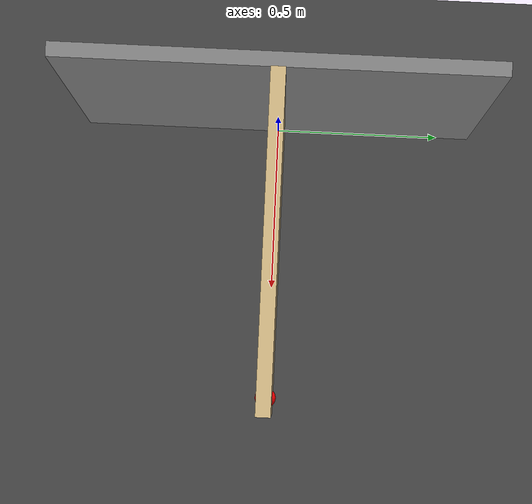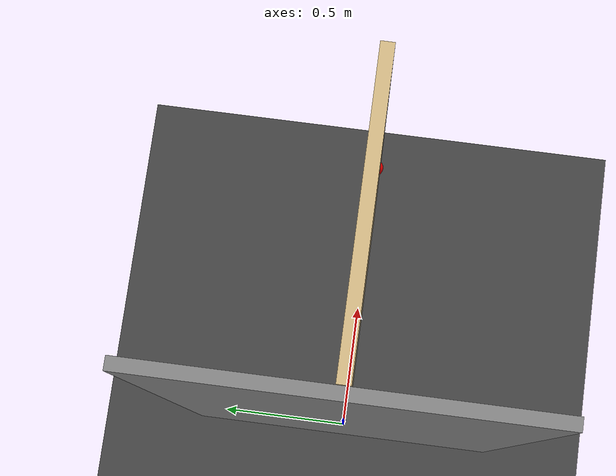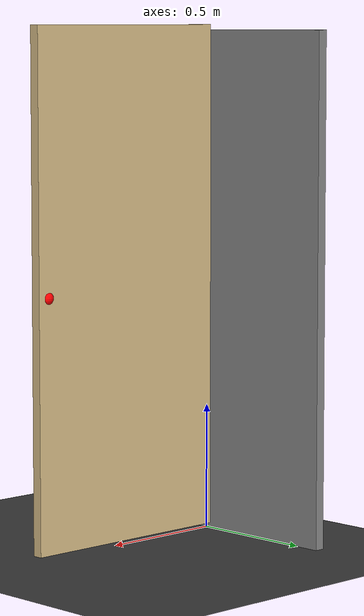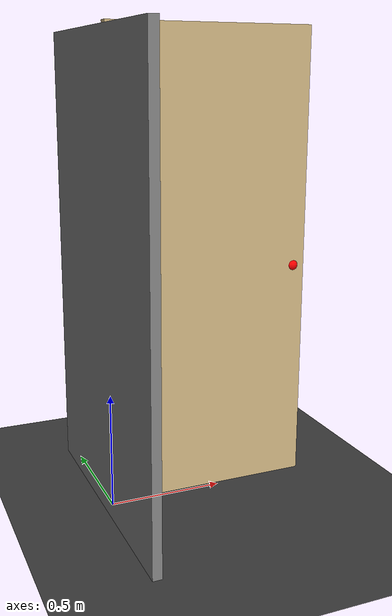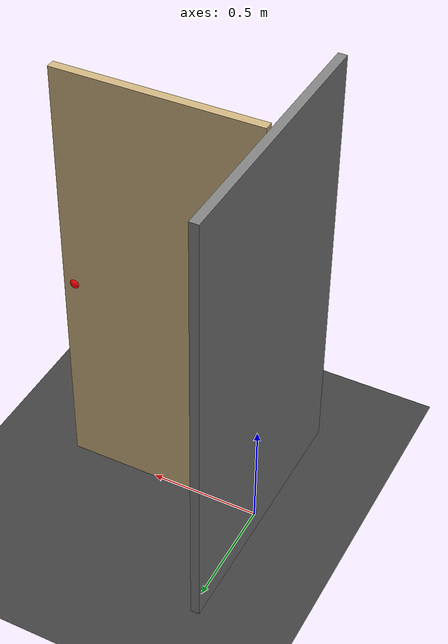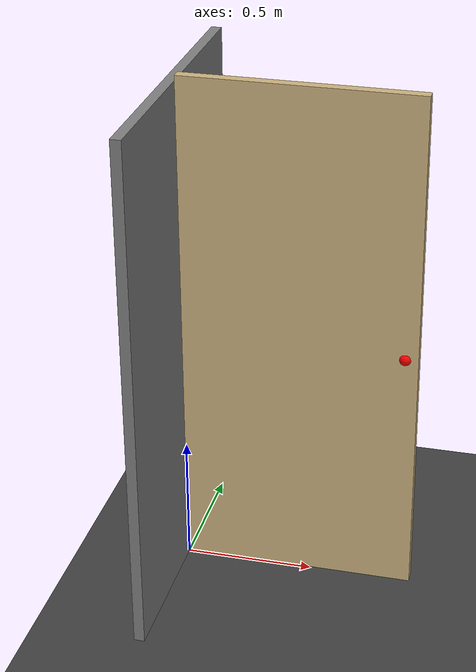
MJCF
<mujoco model="single_hinge_door">
  <compiler angle="radian"/>
  <option timestep="0.002" gravity="0 0 -9.81"/>

  <asset>
    <texture type="skybox" builtin="gradient" rgb1="0.8 0.9 1" rgb2="0.3 0.4 0.5" width="256" height="256"/>
    <texture name="grid" type="2d" builtin="checker" rgb1="0.2 0.2 0.2" rgb2="0.3 0.3 0.3" width="300" height="300"/>
    <material name="grid" texture="grid" texrepeat="5 5" reflectance="0.1"/>
  </asset>

  <worldbody>
    <light pos="0 -1 3" dir="0 0.3 -1" diffuse="1 1 1"/>
    <!-- Floor is visual + collision for other objects later; door must not scrape it. -->
    <geom name="floor" type="plane" size="3 3 0.1" material="grid"/>

    <!-- Static wall for visual context only — no collision (contype/conaffinity=0).
         Previously this jammed the door shut because the panel face sat flush against it. -->
    <geom name="wall" type="box" pos="-0.02 0 1.0" size="0.02 0.6 1.0"
          rgba="0.5 0.5 0.5 1" contype="0" conaffinity="0"/>

    <!-- Door body: origin IS the hinge location. -->
    <body name="door" pos="0 0 0">
      <joint name="hinge" type="hinge" pos="0 0 0" axis="0 0 1"
             limited="true" range="-0.17 2.09"
             damping="0.2" frictionloss="3.0"/>
      <!-- Panel raised 2 cm so the bottom edge clears the floor.
           Mass/inertia still computed from size + density. -->
      <geom name="panel" type="box" pos="0.45 0 1.02" size="0.45 0.02 1.0"
            density="600" rgba="0.8 0.7 0.5 1"/>
      <!-- Handle: force application point, away from the hinge. -->
      <site name="handle" pos="0.85 0 1.0" size="0.03" rgba="1 0 0 1"/>
    </body>

    <!-- Fixed camera looking down at the door from an angle that shows swing. -->
    <camera name="view" pos="2.5 -2.8 2.2" xyaxes="1 0.9 0 0 0.4 1"/>
  </worldbody>
</mujoco>
